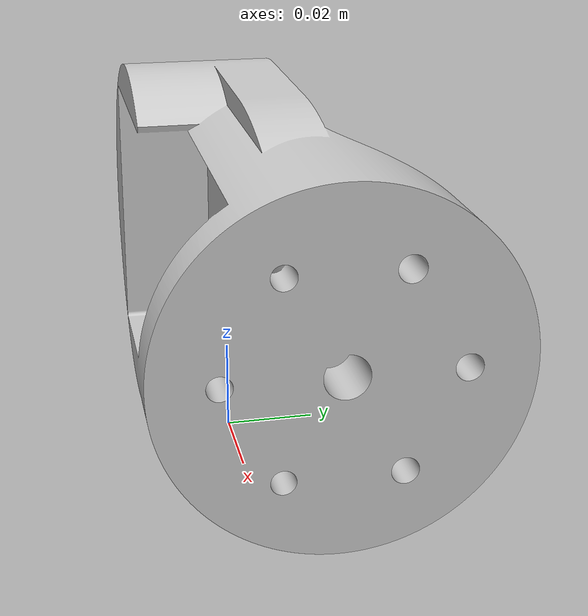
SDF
<sdf version="1.6">
  <model name="mesh_test">
    <static>true</static>
    <link name="link">
      <visual name="visual">
        <geometry>
          <mesh>
            <uri>package://xolobot_arm/models/meshes/hombro_alto.dae</uri>
            <scale>1 1 1</scale>
          </mesh>
        </geometry>
      </visual>
    </link>
  </model>
</sdf>
